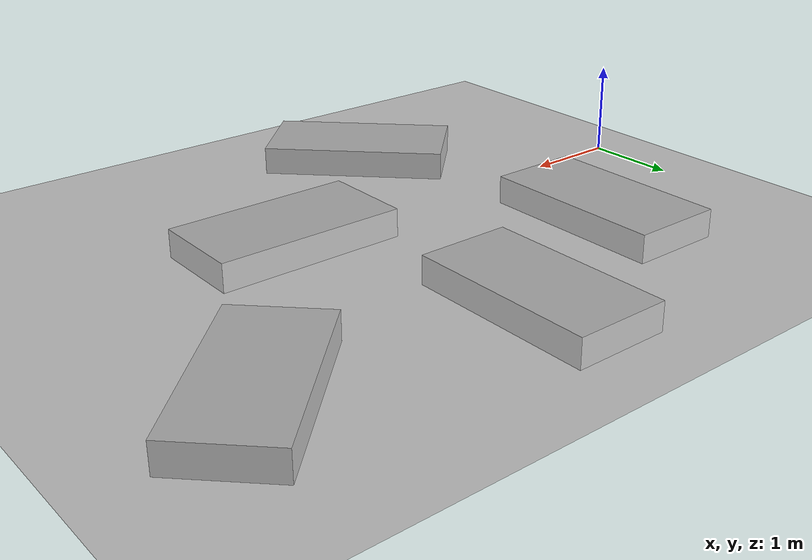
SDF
<?xml version="1.0" ?>
<sdf version="1.4">
  <world name="default">
    <include>
      <uri>model://ground_plane</uri>
    </include>
    <include>
      <uri>model://sun</uri>
    </include>
    <include>
      <uri>model://gazebo_worlds/models/multiple_steps</uri>
      <pose>0 0 0 0 0 0</pose>
      <static>true</static>
    </include>

    <physics type="ode">
      <gravity>0 0 -9.81</gravity>
    </physics>
  </world>
</sdf>

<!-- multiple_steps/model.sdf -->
<sdf version="1.4">

  <model name="multiple_steps">
    <static>true</static>
    <pose>0.5 0 0 0 0 0</pose>

    <link name='step_1'>
      <pose>1.6 1.5 0.15 0 0 0</pose>
      <collision name='collision'>
        <geometry>
          <box>
            <size>1 2 0.3</size>
          </box>
        </geometry>
      </collision>
      <visual name='visual'>
        <geometry>
          <box>
            <size>1 2 0.3</size>
          </box>
        </geometry>
      </visual>
    </link>

    <link name='step_2'>
      <pose>2.5 -1.5 0.15 0 0 0.78539</pose>
      <collision name='collision'>
        <geometry>
          <box>
            <size>1 2 0.3</size>
          </box>
        </geometry>
      </collision>
      <visual name='visual'>
        <geometry>
          <box>
            <size>1 2 0.3</size>
          </box>
        </geometry>
      </visual>
    </link>

    <link name='step_3'>
      <pose>4.5 0.0 0.15 0 0 1.570796</pose>
      <collision name='collision'>
        <geometry>
          <box>
            <size>1 2 0.3</size>
          </box>
        </geometry>
      </collision>
      <visual name='visual'>
        <geometry>
          <box>
            <size>1 2 0.3</size>
          </box>
        </geometry>
      </visual>
    </link>

    <link name='step_4'>
      <pose>3.5 2.5 0.15 0 0 0</pose>
      <collision name='collision'>
        <geometry>
          <box>
            <size>1 2 0.3</size>
          </box>
        </geometry>
      </collision>
      <visual name='visual'>
        <geometry>
          <box>
            <size>1 2 0.3</size>
          </box>
        </geometry>
      </visual>
    </link>

    <link name='step_5'>
      <pose>6.25 2.25 0.15 0 0 -0.78539</pose>
      <collision name='collision'>
        <geometry>
          <box>
            <size>1 2 0.3</size>
          </box>
        </geometry>
      </collision>
      <visual name='visual'>
        <geometry>
          <box>
            <size>1 2 0.3</size>
          </box>
        </geometry>
      </visual>
    </link>

  </model>
</sdf>
